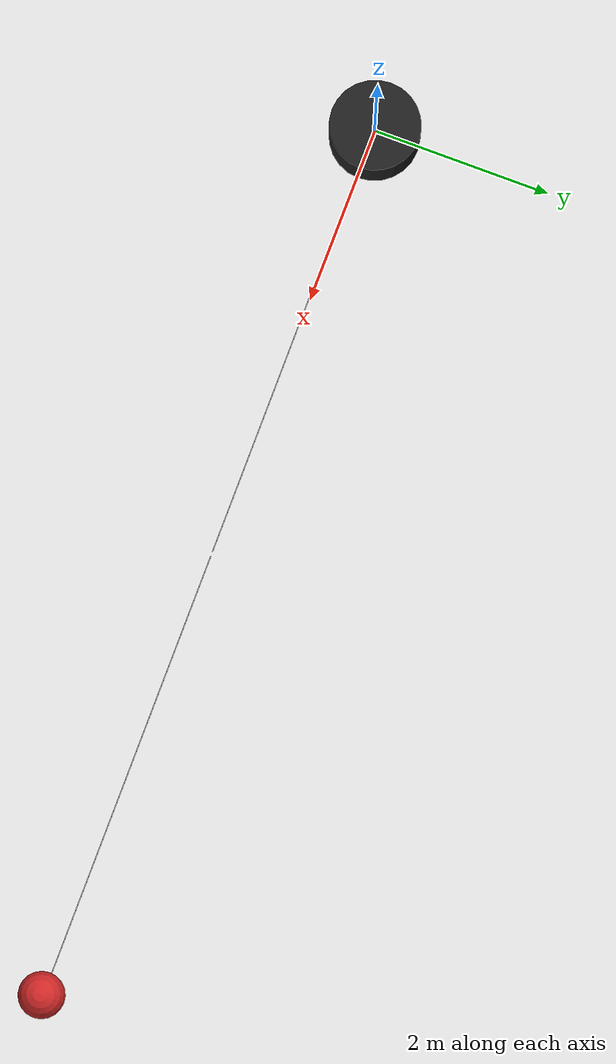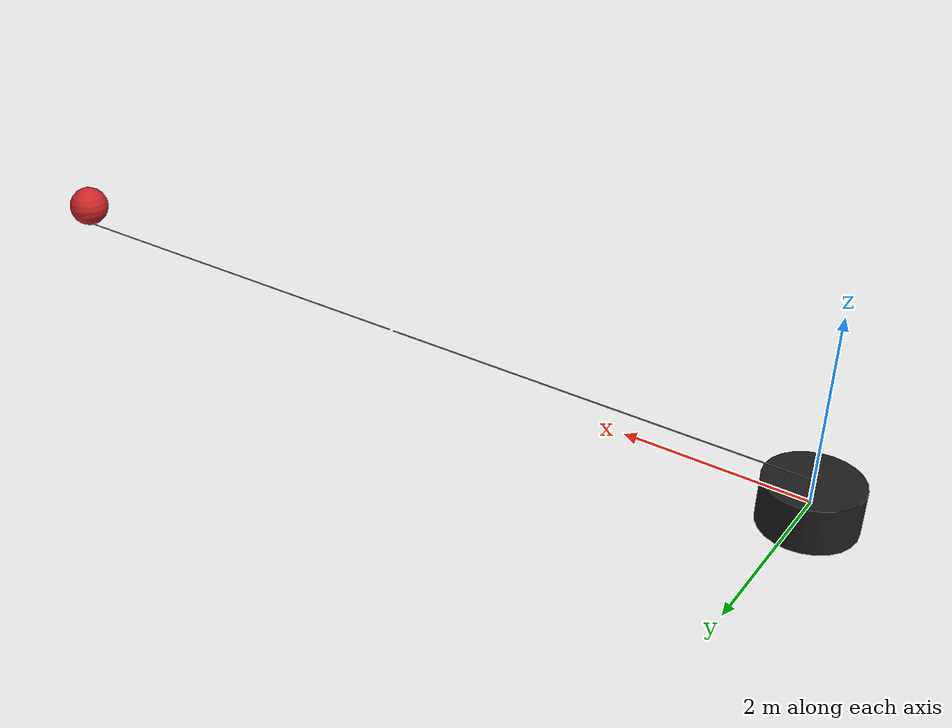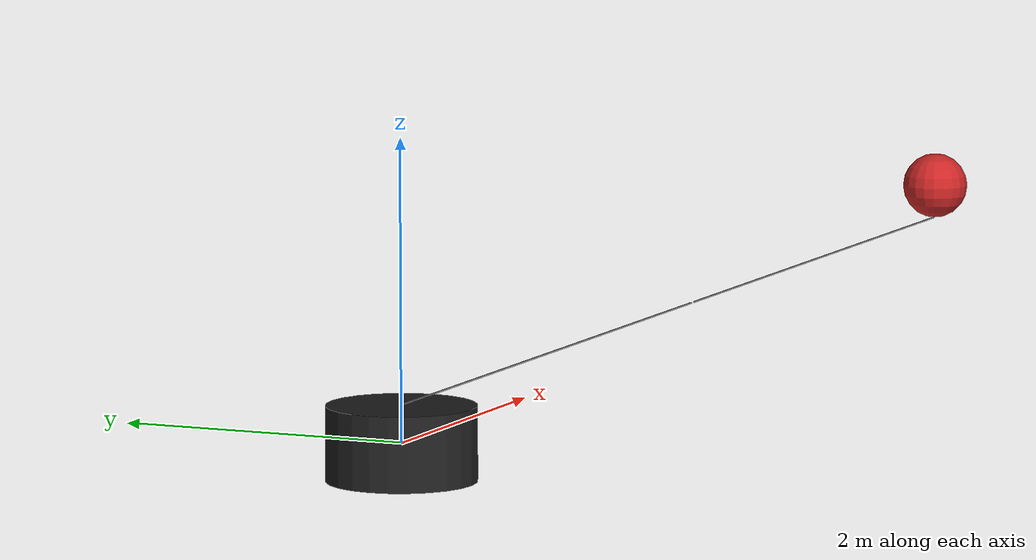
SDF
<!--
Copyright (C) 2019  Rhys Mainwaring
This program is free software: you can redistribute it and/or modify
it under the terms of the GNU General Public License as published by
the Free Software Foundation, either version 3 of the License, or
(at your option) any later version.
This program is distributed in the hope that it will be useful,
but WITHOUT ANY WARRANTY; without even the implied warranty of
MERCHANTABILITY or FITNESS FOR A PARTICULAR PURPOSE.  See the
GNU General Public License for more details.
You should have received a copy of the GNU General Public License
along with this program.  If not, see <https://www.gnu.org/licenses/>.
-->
<?xml version="1.0" ?>
<sdf version="1.6">
  <model name="mooring">

    <!-- Long Links  -->
    <include>
      <pose>0 0 0 0 0 0</pose>
      <uri>model://mooring_block</uri>
      <name>mooring_block</name>
    </include>

    <include>
      <pose>2.5 0 0.25 0 0 0</pose>
      <uri>model://chain_long</uri>
      <name>chain</name>
    </include>

    <include>
      <pose>10 0 0.5 0 0 0</pose>
      <uri>model://spherical_buoy</uri>
      <name>spherical_buoy</name>
    </include>

    <joint type="ball" name="block_chain_joint">
      <pose>-2.5 0 0 0 0 0</pose>
      <parent>mooring_block::base_link</parent>
      <child>chain::chain_link0::base_link</child>
    </joint>

    <joint type="ball" name="chain_buoy_link">
      <pose>0 0 -0.25 0 0 0</pose>
      <parent>chain::chain_link1::base_link</parent>
      <child>spherical_buoy::base_link</child>
    </joint>

  </model>
</sdf>

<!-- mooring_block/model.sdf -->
<!--
  Specifications

  Steel mooring block
  r = 0.5
  h = 0.5
  mass = 3023kg
-->
<sdf version='1.6'>
  <model name='mooring_block'>
    <pose>0 0 0 0 0 0</pose>
    <link name="base_link">
      <visual name="base_visual">
        <geometry>
          <cylinder>
            <radius>0.5</radius>
            <length>0.5</length>
          </cylinder>
        </geometry>
        <material>
          <script>
            <name>Gazebo/Black</name>
          </script>
        </material>
      </visual>
      <collision name="base_collision">
        <geometry>
          <cylinder>
            <radius>0.5</radius>
            <length>0.5</length>
          </cylinder>
        </geometry>
      </collision>
      <inertial>
        <pose>0 0 0 0 0 0</pose>
        <mass>3023</mass>
        <inertia>
          <ixx>251</ixx>
          <ixy>0</ixy>
          <iyy>251</iyy>
          <iyz>0</iyz>
          <izz>378</izz>
        </inertia>
      </inertial>
    </link>
  </model>
</sdf>

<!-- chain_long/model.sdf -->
<!--
  Specifications:

  L = 4.95m
  C = 0m
  +/- 2.475m

  Mass is calculated for steel. 4.95m x 0.01m x 0.01m is 3.81kg.
  Links are offset at 5.0m, 10.0m, etc.
  Joints must be offset -2.5m
-->
<sdf version="1.6">
  <model name="chain_long">
    <static>false</static>

    <include>
      <pose>0 0 0 0 0 0</pose>
      <uri>model://chain_link_long</uri>
      <name>chain_link0</name>
    </include>

    <include>
      <pose>5.0 0 0 0 0 0</pose>
      <uri>model://chain_link_long</uri>
      <name>chain_link1</name>
    </include>

    <joint type="ball" name="chain_link_0_1_joint">
      <pose>-2.5 0 0 0 0 0</pose>
      <parent>chain_link0::base_link</parent>
      <child>chain_link1::base_link</child>
    </joint>

  </model>
</sdf>

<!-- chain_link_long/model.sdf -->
<sdf version='1.6'>

  <model name='chain_link_long'>
    <pose>0 0 0 0 0 0</pose>
    <static>false</static>
    <link name="base_link">
      <visual name="base_visual">
        <geometry>
          <box>
            <size>4.95 0.01 0.01</size>
          </box>
        </geometry>
        <material>
          <script>
            <name>Gazebo/Grey</name>
          </script>
        </material>
      </visual>
      <collision name="base_collision">
        <max_contacts>2</max_contacts>
        <geometry>
          <box>
            <size>4.95 0.01 0.01</size>
          </box>
        </geometry>
      </collision>
      <inertial>
        <pose>0 0 0 0 0 0</pose>
        <mass>3.81</mass>
        <inertia>
          <ixx>0.0000635</ixx>
          <ixy>0</ixy>
          <iyy>7.78</iyy>
          <iyz>0</iyz>
          <izz>7.78</izz>
        </inertia>
      </inertial>
    </link>
  </model>
</sdf>

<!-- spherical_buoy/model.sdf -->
<sdf version="1.6">
  <model name="spherical_buoy">
    <static>false</static>

    <plugin name="hydrodynamics" filename="libHydrodynamicsPlugin.so">
      <!-- Wave Model -->
      <wave_model>ocean_waves</wave_model>

      <!-- Hydrodynamics -->
      <damping_on>true</damping_on>
      <viscous_drag_on>true</viscous_drag_on>
      <pressure_drag_on>true</pressure_drag_on>

      <!-- Markers -->
      <markers>
        <update_rate>30</update_rate>
        <water_patch>false</water_patch>
        <waterline>false</waterline>
        <underwater_surface>false</underwater_surface>
      </markers>
    </plugin>

    <link name="base_link">
      <visual name="base_visual">
        <geometry>
          <sphere>
            <radius>0.25</radius>
          </sphere>
        </geometry>
        <material>
          <script>
            <name>Gazebo/Red</name>
          </script>
        </material>
      </visual>

      <collision name="base_collision">
        <geometry>
          <sphere>
            <radius>0.25</radius>
          </sphere>
        </geometry>
      </collision>

      <!-- Mass and inertial assume volume is 0.1 densitity of water -->
      <inertial>
        <mass>6.545</mass>
        <inertia>
          <ixx>0.1636</ixx>
          <ixy>0.0</ixy>
          <ixz>0.0</ixz>
          <iyy>0.1636</iyy>
          <iyz>0.0</iyz>
          <izz>0.1636</izz>
        </inertia>
      </inertial>

    </link>

    <!-- Chain -->

  </model>
</sdf>
